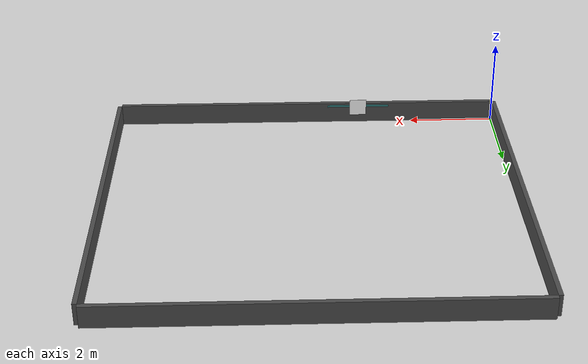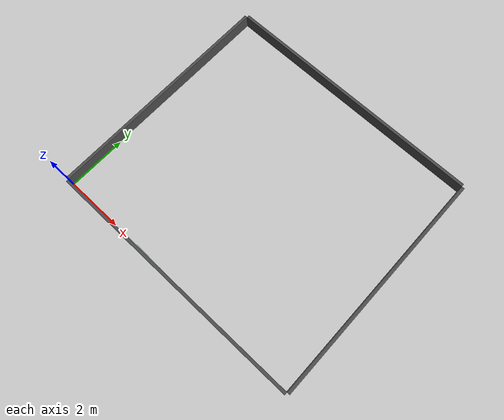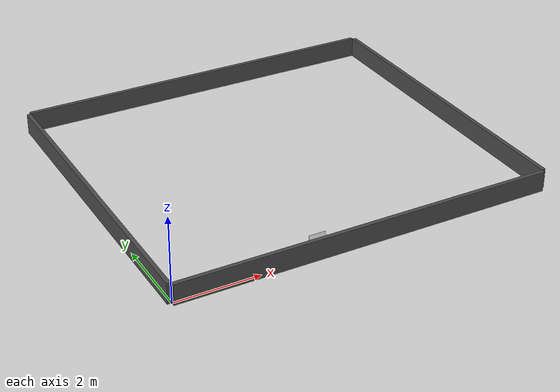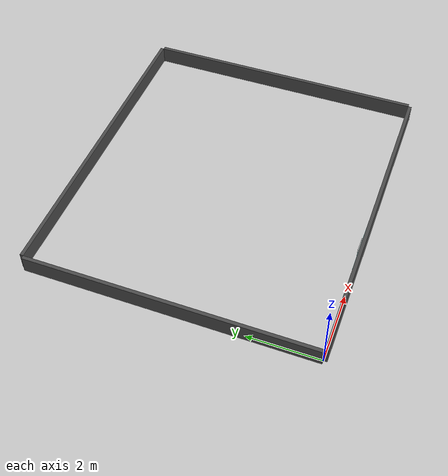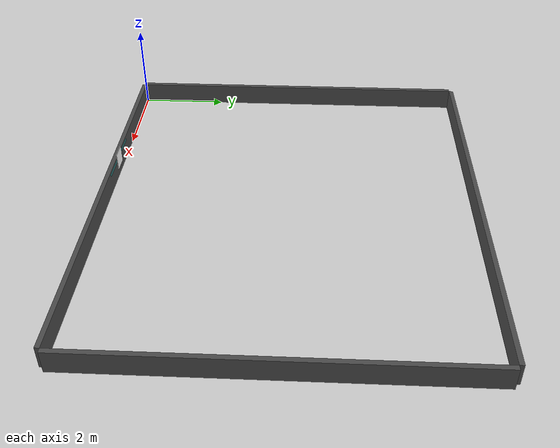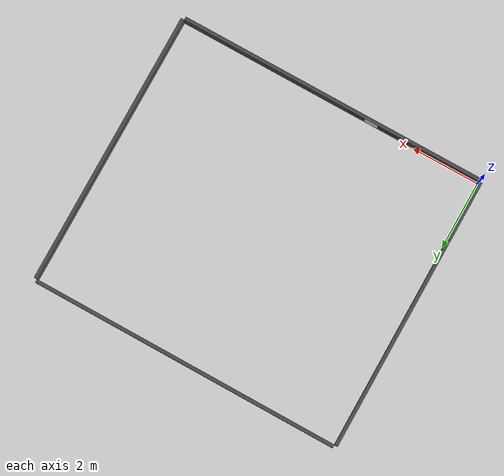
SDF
<sdf version="1.9">
 <world name="lunabotics_us_arena_terrain">
  <gravity>0 0 -9.81</gravity>
  <physics name="1ms" type="dart">
   <max_step_size>0.001</max_step_size>
   <real_time_factor>1.0</real_time_factor>
  </physics>
  <plugin filename="gz-sim-physics-system" name="gz::sim::systems::Physics"/>
  <plugin filename="gz-sim-user-commands-system" name="gz::sim::systems::UserCommands"/>
  <plugin filename="gz-sim-scene-broadcaster-system" name="gz::sim::systems::SceneBroadcaster"/>
  <plugin filename="gz-sim-sensors-system" name="gz::sim::systems::Sensors">
   <render_engine>ogre2</render_engine>
  </plugin>
  <plugin filename="gz-sim-imu-system" name="gz::sim::systems::Imu"/>
  <plugin filename="gz-sim-contact-system" name="gz::sim::systems::Contact"/>
  <scene><ambient>0.4 0.4 0.4 1</ambient><background>0.7 0.7 0.7 1</background><shadows>false</shadows></scene>
  <light type="directional" name="sun">
   <cast_shadows>false</cast_shadows>
   <diffuse>0.9 0.9 0.9 1</diffuse>
   <specular>0.2 0.2 0.2 1</specular>
   <pose>0 0 10 0 0 0</pose>
   <direction>-0.6 0.3 -0.6</direction>
  </light>
  <model name="wall_south">
   <static>true</static>
   <link name="link">
    <collision name="collision"><geometry><box><size>9.14 0.1 0.5</size></box></geometry></collision>
    <visual name="visual">
     <geometry><box><size>9.14 0.1 0.5</size></box></geometry>
     <material><ambient>0.3 0.3 0.3 1</ambient><diffuse>0.3 0.3 0.3 1</diffuse></material>
    </visual>
    <pose>4.57 -0.05 0.25 0 0 0</pose>
   </link>
  </model>
  <model name="wall_north">
   <static>true</static>
   <link name="link">
    <collision name="collision"><geometry><box><size>9.14 0.1 0.5</size></box></geometry></collision>
    <visual name="visual">
     <geometry><box><size>9.14 0.1 0.5</size></box></geometry>
     <material><ambient>0.3 0.3 0.3 1</ambient><diffuse>0.3 0.3 0.3 1</diffuse></material>
    </visual>
    <pose>4.57 8.15 0.25 0 0 0</pose>
   </link>
  </model>
  <model name="wall_west">
   <static>true</static>
   <link name="link">
    <collision name="collision"><geometry><box><size>0.1 8.10 0.5</size></box></geometry></collision>
    <visual name="visual">
     <geometry><box><size>0.1 8.10 0.5</size></box></geometry>
     <material><ambient>0.3 0.3 0.3 1</ambient><diffuse>0.3 0.3 0.3 1</diffuse></material>
    </visual>
    <pose>-0.05 4.05 0.25 0 0 0</pose>
   </link>
  </model>
  <model name="wall_east">
   <static>true</static>
   <link name="link">
    <collision name="collision"><geometry><box><size>0.1 8.10 0.5</size></box></geometry></collision>
    <visual name="visual">
     <geometry><box><size>0.1 8.10 0.5</size></box></geometry>
     <material><ambient>0.3 0.3 0.3 1</ambient><diffuse>0.3 0.3 0.3 1</diffuse></material>
    </visual>
    <pose>9.19 4.05 0.25 0 0 0</pose>
   </link>
  </model>
  <model name="fiducial_rail_marker">
   <static>true</static>
   <link name="link">
    <visual name="visual">
     <geometry><box><size>1.5 0.01 0.05</size></box></geometry>
     <material><ambient>0 1 1 0.3</ambient><diffuse>0 1 1 0.3</diffuse></material>
    </visual>
    <pose>3.32 0.005 0.425 0 0 0</pose>
   </link>
  </model>
  <model name="apriltag_0">
   <static>true</static>
   <pose>3.32 0.02 0.4 0 0 1.57</pose>
   <link name="link">
    <collision name="collision"><geometry><box><size>0.01 0.4 0.4</size></box></geometry></collision>
    <visual name="visual">
     <geometry><box><size>0.01 0.4 0.4</size></box></geometry>
     <material>
      <ambient>1 1 1 1</ambient>
      <diffuse>1 1 1 1</diffuse>
      <specular>0 0 0 1</specular>
      <pbr>
       <metal>
        <albedo_map>model://apriltag_model/materials/textures/tag36_11_00000.png</albedo_map>
        <metalness>0.0</metalness>
        <roughness>1.0</roughness>
       </metal>
      </pbr>
     </material>
    </visual>
   </link>
  </model>
 </world>
</sdf>
